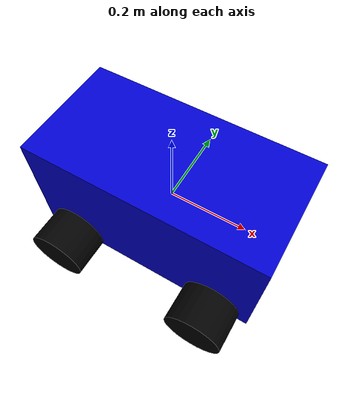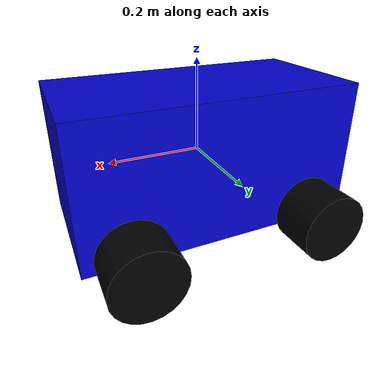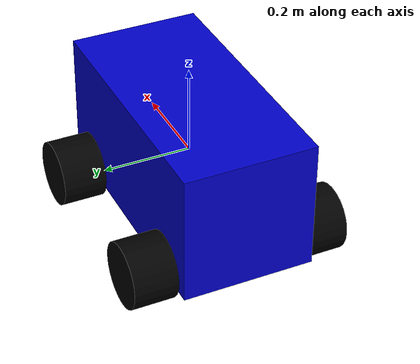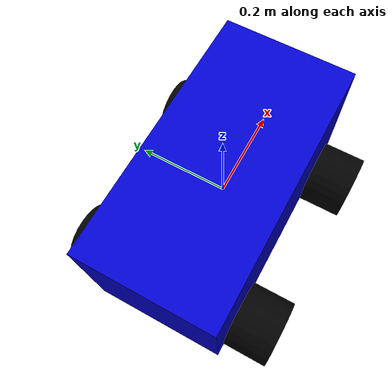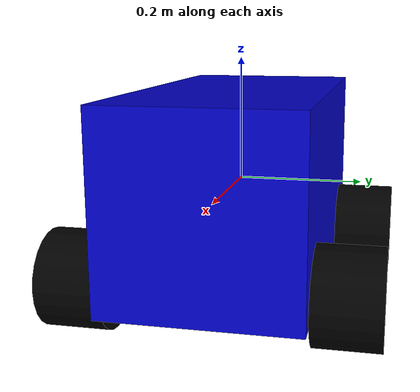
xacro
<?xml version="1.0"?>
<robot name="roscontrol" xmlns:xacro="http://ros.org/wiki/xacro">

    <xacro:property name="robot_length" value="0.6"/>
    <xacro:property name="robot_width" value="0.3"/>
    <xacro:property name="robot_height" value="0.3"/>
    <xacro:property name="leglen" value="0.6"/>
    <xacro:property name="polelen" value="0.2"/>
    <xacro:property name="bodylen" value="0.6"/>
    <xacro:property name="baselen" value="0.4"/>
    <xacro:property name="wheeldiam" value="0.15"/>
    <xacro:property name="pi" value="3.1415"/>

    <material name="blue">
        <color rgba="0 0 0.8 1"/>
    </material>

    <material name="black">
        <color rgba="0 0 0 1"/>
    </material>

    <material name="white">
        <color rgba="1 1 1 1"/>
    </material>

    <xacro:macro name="default_inertial" params="mass">
        <inertial>
            <mass value="${mass}"/>
            <inertia ixx="1.0" ixy="0.0" ixz="0.0" iyy="1.0" iyz="0.0" izz="1.0"/>
        </inertial>
    </xacro:macro>

    <link name="base_link">
        <visual>
            <geometry>
                <box size="${robot_length} ${robot_width} ${robot_height}"/>
            </geometry>
            <material name="blue"/>
        </visual>
        <collision>
            <geometry>
                <box size="${robot_length} ${robot_width} ${robot_height}"/>
            </geometry>
        </collision>
    </link>

    <link name="dummy_base_link">
        <xacro:default_inertial mass="20"/>
    </link>

    <joint name="dummy_joint" type="fixed">
        <parent link="base_link"/>
        <child link="dummy_base_link"/>
        <origin xyz="0 0 0 " rpy="0 0 0"/>
    </joint>

    <xacro:macro name="wheel" params="prefix suffix x_reflect y_reflect">

        <link name="${prefix}_${suffix}_wheel">
            <visual>
                <origin xyz="0 0 0" rpy="${pi/2} 0 0"/>
                <geometry>
                    <cylinder radius="${wheeldiam/2}" length="0.1"/>
                </geometry>
                <material name="black"/>
            </visual>
            <collision>
                <origin xyz="0 0 0" rpy="${pi/2} 0 0"/>
                <geometry>
                    <cylinder radius="${wheeldiam/2}" length="0.1"/>
                </geometry>
            </collision>
            <xacro:default_inertial mass="1"/>
        </link>

        <joint name="${prefix}_${suffix}_wheel_joint" type="continuous">
            <axis xyz="0 1 0" rpy="0 0 0"/>
            <parent link="base_link"/>
            <child link="${prefix}_${suffix}_wheel"/>
            <origin xyz="${baselen*x_reflect/3*1.5} ${0.2*y_reflect} -${wheeldiam/2+.05}" rpy="0 0 0"/>
        </joint>

        <!-- This block provides the simulator (Gazebo) with information on a few additional
        physical properties. See http://gazebosim.org/tutorials/?tut=ros_urdf for more-->
        <gazebo reference="${prefix}_${suffix}_wheel">
            <mu1 value="200.0"/>
            <mu2 value="100.0"/>
            <kp value="10000000.0"/>
            <kd value="1.0"/>
            <material>Gazebo/Grey</material>
        </gazebo>

        <!-- This block connects the wheel joint to an actuator (motor), which informs both
        simulation and visualization of the robot -->
       <transmission name="${prefix}_${suffix}_wheel_trans">
           <type>transmission_interface/SimpleTransmission</type>
           <actuator name="${prefix}_${suffix}_wheel_motor">
               <mechanicalReduction>1</mechanicalReduction>
           </actuator>
           <joint name="${prefix}_${suffix}_wheel_joint">
               <hardwareInterface>hardware_interface/VelocityJointInterface</hardwareInterface>
           </joint>
       </transmission>
    </xacro:macro>

    <xacro:wheel prefix="left" suffix="front" x_reflect="1" y_reflect="1"/>
    <xacro:wheel prefix="right" suffix="front" x_reflect="1" y_reflect="-1"/>
    <xacro:wheel prefix="left" suffix="back" x_reflect="-1" y_reflect="1"/>
    <xacro:wheel prefix="right" suffix="back" x_reflect="-1" y_reflect="-1"/>

    <xacro:macro name="leg" params="prefix reflect">
        <link name="${prefix}_leg">
            <visual>
                <geometry>
                    <box size="${leglen} 0.1 0.2"/>
                </geometry>
                <origin xyz="0 0 -${leglen/2}" rpy="0 ${pi/2} 0"/>
                <material name="white"/>
            </visual>
            <collision>
                <geometry>
                    <box size="${leglen} 0.1 0.2"/>
                </geometry>
                <origin xyz="0 0 -${leglen/2}" rpy="0 ${pi/2} 0"/>
            </collision>
            <xacro:default_inertial mass="10"/>
        </link>

        <joint name="base_to_${prefix}_leg" type="fixed">
            <parent link="base_link"/>
            <child link="${prefix}_leg"/>
            <origin xyz="0 ${reflect*(width+.02)} 0.25"/>
        </joint>

        <link name="${prefix}_base">
            <visual>
                <geometry>
                    <box size="${baselen} 0.1 0.1"/>
                </geometry>
                <material name="white"/>
            </visual>
            <collision>
                <geometry>
                    <box size="${baselen} 0.1 0.1"/>
                </geometry>
            </collision>
            <xacro:default_inertial mass="10"/>
        </link>

        <joint name="${prefix}_base_joint" type="fixed">
            <parent link="${prefix}_leg"/>
            <child link="${prefix}_base"/>
            <origin xyz="0 0 ${-leglen}"/>
        </joint>
        <xacro:wheel prefix="${prefix}" suffix="front" reflect="1"/>
        <xacro:wheel prefix="${prefix}" suffix="back" reflect="-1"/>
    </xacro:macro>

    <xacro:macro name="gripper" params="prefix reflect">
        <joint name="${prefix}_gripper_joint" type="revolute">
            <axis xyz="0 0 ${reflect}"/>
            <limit effort="1000.0" lower="0.0" upper="0.548" velocity="0.5"/>
            <origin rpy="0 0 0" xyz="${polelen} ${reflect*0.01} 0"/>
            <parent link="gripper_pole"/>
            <child link="${prefix}_gripper"/>
            <limit effort="30" velocity="1.0"/>
            <dynamics damping="0.0" friction="0.0"/>
        </joint>

        <link name="${prefix}_gripper">
            <visual>
                <origin rpy="${(reflect-1)/2*pi} 0 0" xyz="0 0 0"/>
                <geometry>
                    <mesh filename="package://urdf_tutorial/meshes/l_finger.dae"/>
                </geometry>
            </visual>
            <collision>
                <geometry>
                    <mesh filename="package://urdf_tutorial/meshes/l_finger.dae"/>
                </geometry>
                <origin rpy="${(reflect-1)/2*pi} 0 0" xyz="0 0 0"/>
            </collision>
            <xacro:default_inertial mass="0.05"/>
        </link>

        <transmission name="${prefix}_gripper_trans">
            <type>transmission_interface/SimpleTransmission</type>
            <actuator name="${prefix}_gripper_motor">
                <mechanicalReduction>1</mechanicalReduction>
            </actuator>
            <joint name="${prefix}_gripper_joint">
                <hardwareInterface>PositionJointInterface</hardwareInterface>
            </joint>
        </transmission>

        <joint name="${prefix}_tip_joint" type="fixed">
            <parent link="${prefix}_gripper"/>
            <child link="${prefix}_tip"/>
        </joint>

        <link name="${prefix}_tip">
            <visual>
                <origin rpy="${(reflect-1)/2*pi} 0 0" xyz="0.09137 0.00495 0"/>
                <geometry>
                    <mesh filename="package://urdf_tutorial/meshes/l_finger_tip.dae"/>
                </geometry>
            </visual>
            <collision>
                <geometry>
                    <mesh filename="package://urdf_tutorial/meshes/l_finger_tip.dae"/>
                </geometry>
                <origin rpy="${(reflect-1)/2*pi} 0 0" xyz="0.09137 0.00495 0"/>
            </collision>
            <xacro:default_inertial mass="0.05"/>
        </link>
    </xacro:macro>

    <!-- This block connects the head_swivel joint to an actuator (motor), which informs both
    simulation and visualization of the robot -->

    <!-- Gazebo plugin for ROS Control -->
    <gazebo>
        <plugin name="gazebo_ros_control" filename="libgazebo_ros_control.so">
            <robotNamespace>/</robotNamespace>
        </plugin>
    </gazebo>

    <gazebo>
        <plugin name="gps_sim" filename="libhector_gazebo_ros_gps.so">
            <alwaysOn>1</alwaysOn>
            <updateRate>10.0</updateRate>
            <bodyName>base_link</bodyName>
            <frameId>base_link</frameId>
            <topicName>gps/fix</topicName>
            <velocityTopicName>gps/fix_velocity</velocityTopicName>

            <offset>0 0 0</offset>
            <drift>0 0 0</drift>
            <gaussianNoise>0.05 0.05 0.05</gaussianNoise>
            <velocityDrift>0.0001 0.0001 0.0001</velocityDrift>
            <velocityOffset>0 0 0</velocityOffset>
            <velocityGaussianNoise>0.05 0.05 0.05</velocityGaussianNoise>

            <referenceLatitude>0.0</referenceLatitude>
            <referenceLongitude>0.0</referenceLongitude>
        </plugin>
    </gazebo>

</robot>
